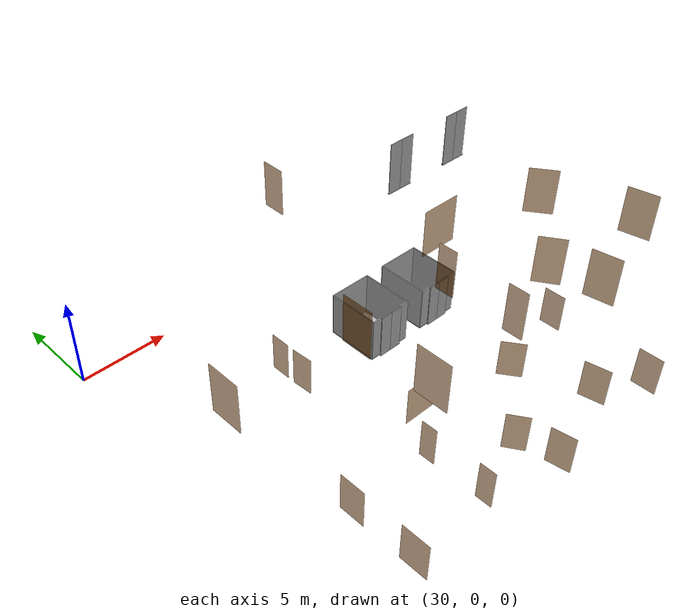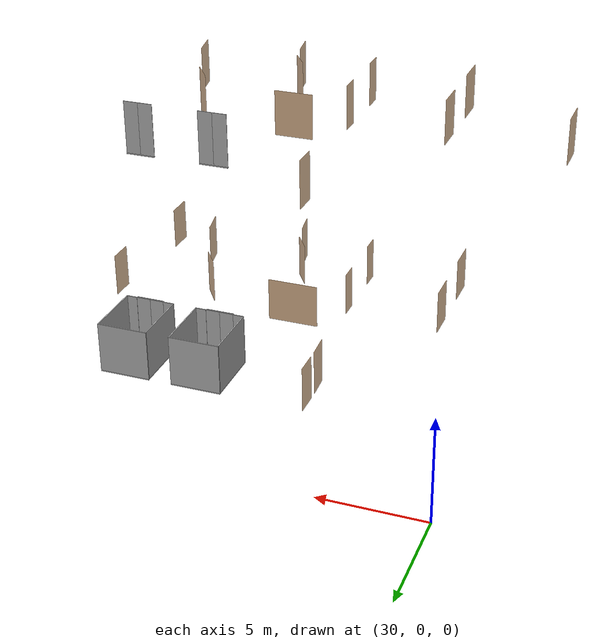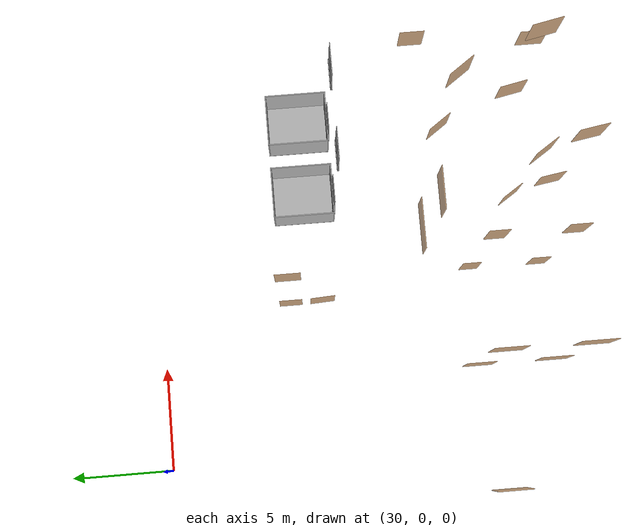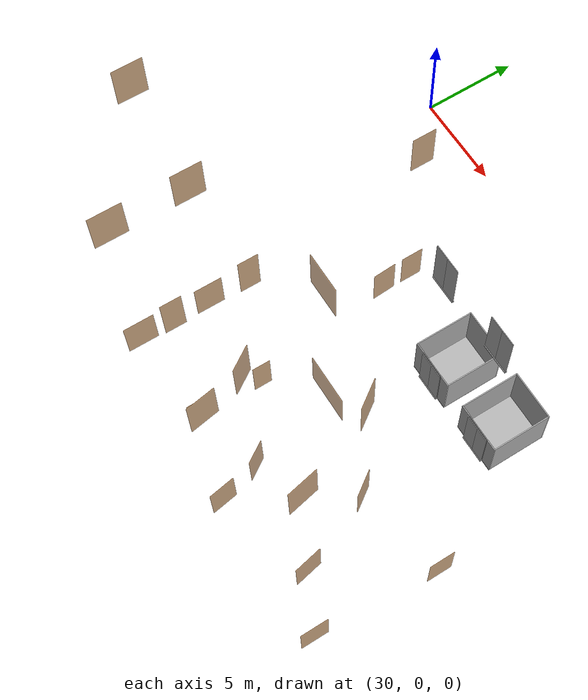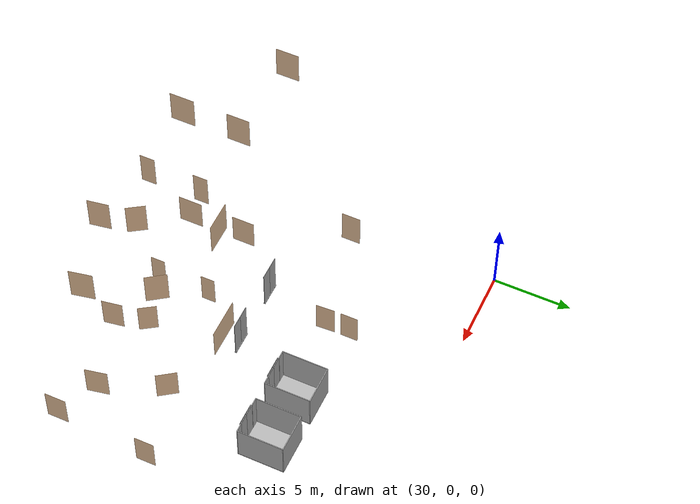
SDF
<sdf version="1.7">
 <world name="world">
  <include><uri>model://sun</uri></include>
  <model name="L1_right_consult_rm_12_outer">
   <pose>33.97311257259339 -19.137196646282852 0.0 0 0 -1.5707963267948966</pose>
   <static>true</static>
   <link name="right">
    <pose>0 0 1.11 0 0 0</pose>
    <visual name="right_visual">
     <geometry><box><size>1.5655586323602984 0.03 2.2</size></box></geometry>
     <material><ambient>0.5 0.25 0 0.6</ambient><diffuse>0.5 0.25 0 0.6</diffuse></material>
    </visual>
    <collision name="right_collision">
     <geometry><box><size>1.5655586323602984 0.03 2.2</size></box></geometry>
     <surface><contact><collide_bitmask>0x02</collide_bitmask></contact></surface>
    </collision>
    <inertial>
     <mass>50.0</mass>
     <inertia><ixx>20.17041666666667</ixx><iyy>30.379057630657705</iyy><izz>10.216140963991034</izz></inertia>
    </inertial>
   </link>
   <joint name="right_joint" type="prismatic">
    <parent>world</parent>
    <child>right</child>
    <axis>
     <xyz>1 0 0</xyz>
     <limit><lower>0.0</lower><upper>1.5755586323602984</upper><effort>500.0</effort></limit>
    </axis>
   </joint>
  </model>
  <model name="L1_right_consult_rm_13_outer">
   <pose>33.97311257259339 -15.447046267451267 0.0 0 0 -1.5707963267948966</pose>
   <static>true</static>
   <link name="right">
    <pose>0 0 1.11 0 0 0</pose>
    <visual name="right_visual">
     <geometry><box><size>1.4589473481789168 0.03 2.2</size></box></geometry>
     <material><ambient>0.5 0.25 0 0.6</ambient><diffuse>0.5 0.25 0 0.6</diffuse></material>
    </visual>
    <collision name="right_collision">
     <geometry><box><size>1.4589473481789168 0.03 2.2</size></box></geometry>
     <surface><contact><collide_bitmask>0x02</collide_bitmask></contact></surface>
    </collision>
    <inertial>
     <mass>50.0</mass>
     <inertia><ixx>20.17041666666667</ixx><iyy>29.035530686492898</iyy><izz>8.872614019826223</izz></inertia>
    </inertial>
   </link>
   <joint name="right_joint" type="prismatic">
    <parent>world</parent>
    <child>right</child>
    <axis>
     <xyz>1 0 0</xyz>
     <limit><lower>0.0</lower><upper>1.4689473481789168</upper><effort>500.0</effort></limit>
    </axis>
   </joint>
  </model>
  <model name="L1_right_consult_rm_1_outer">
   <pose>46.068297373178 -14.530337294719446 0.0 0 0 2.1863116312176896</pose>
   <static>true</static>
   <link name="right">
    <pose>0 0 1.11 0 0 0</pose>
    <visual name="right_visual">
     <geometry><box><size>1.3227213939192073 0.03 2.2</size></box></geometry>
     <material><ambient>0.5 0.25 0 0.6</ambient><diffuse>0.5 0.25 0 0.6</diffuse></material>
    </visual>
    <collision name="right_collision">
     <geometry><box><size>1.3227213939192073 0.03 2.2</size></box></geometry>
     <surface><contact><collide_bitmask>0x02</collide_bitmask></contact></surface>
    </collision>
    <inertial>
     <mass>50.0</mass>
     <inertia><ixx>20.17041666666667</ixx><iyy>27.456632858048216</iyy><izz>7.293716191381544</izz></inertia>
    </inertial>
   </link>
   <joint name="right_joint" type="prismatic">
    <parent>world</parent>
    <child>right</child>
    <axis>
     <xyz>1 0 0</xyz>
     <limit><lower>0.0</lower><upper>1.3327213939192073</upper><effort>500.0</effort></limit>
    </axis>
   </joint>
  </model>
  <model name="L1_right_consult_rm_2_outer">
   <pose>47.68885619783859 -18.3893427175878 0.0 0 0 1.769259662102772</pose>
   <static>true</static>
   <link name="right">
    <pose>0 0 1.11 0 0 0</pose>
    <visual name="right_visual">
     <geometry><box><size>1.409133850260675 0.03 2.2</size></box></geometry>
     <material><ambient>0.5 0.25 0 0.6</ambient><diffuse>0.5 0.25 0 0.6</diffuse></material>
    </visual>
    <collision name="right_collision">
     <geometry><box><size>1.409133850260675 0.03 2.2</size></box></geometry>
     <surface><contact><collide_bitmask>0x02</collide_bitmask></contact></surface>
    </collision>
    <inertial>
     <mass>50.0</mass>
     <inertia><ixx>20.17041666666667</ixx><iyy>28.440242533126984</iyy><izz>8.277325866460309</izz></inertia>
    </inertial>
   </link>
   <joint name="right_joint" type="prismatic">
    <parent>world</parent>
    <child>right</child>
    <axis>
     <xyz>1 0 0</xyz>
     <limit><lower>0.0</lower><upper>1.419133850260675</upper><effort>500.0</effort></limit>
    </axis>
   </joint>
  </model>
  <model name="L1_right_procedure">
   <pose>50.74072535671709 -13.553592169531953 0.0 0 0 1.5707963267948966</pose>
   <link name="right">
    <pose>0 0 1.11 0 0 0</pose>
    <visual name="right_visual">
     <geometry><box><size>1.2479862312987977 0.03 2.2</size></box></geometry>
     <material><ambient>0.5 0.25 0 0.6</ambient><diffuse>0.5 0.25 0 0.6</diffuse></material>
    </visual>
    <collision name="right_collision">
     <geometry><box><size>1.2479862312987977 0.03 2.2</size></box></geometry>
     <surface><contact><collide_bitmask>0x02</collide_bitmask></contact></surface>
    </collision>
    <inertial>
     <mass>50.0</mass>
     <inertia><ixx>20.17041666666667</ixx><iyy>26.656123472964072</iyy><izz>6.493206806297401</izz></inertia>
    </inertial>
   </link>
   <joint name="right_joint" type="prismatic">
    <parent>world</parent>
    <child>right</child>
    <axis>
     <xyz>1 0 0</xyz>
     <limit><lower>0.0</lower><upper>1.2579862312987977</upper><effort>500.0</effort></limit>
    </axis>
   </joint>
   <plugin name="door" filename="libdoor.so">
    <v_max_door>0.2</v_max_door>
    <a_max_door>0.2</a_max_door>
    <a_nom_door>0.08</a_nom_door>
    <dx_min_door>0.001</dx_min_door>
    <f_max_door>100.0</f_max_door>
    <door name="L1_right_procedure" type="SlidingDoor" left_joint_name="empty_joint" right_joint_name="right_joint"/>
   </plugin>
  </model>
  <model name="L1_right_treatment">
   <pose>50.29120803046041 -19.682408368908906 0.0 0 0 1.5707963267948966</pose>
   <link name="right">
    <pose>0 0 1.11 0 0 0</pose>
    <visual name="right_visual">
     <geometry><box><size>1.3636702434521746 0.03 2.2</size></box></geometry>
     <material><ambient>0.5 0.25 0 0.6</ambient><diffuse>0.5 0.25 0 0.6</diffuse></material>
    </visual>
    <collision name="right_collision">
     <geometry><box><size>1.3636702434521746 0.03 2.2</size></box></geometry>
     <surface><contact><collide_bitmask>0x02</collide_bitmask></contact></surface>
    </collision>
    <inertial>
     <mass>50.0</mass>
     <inertia><ixx>20.17041666666667</ixx><iyy>27.91498555365381</iyy><izz>7.7520688869871375</izz></inertia>
    </inertial>
   </link>
   <joint name="right_joint" type="prismatic">
    <parent>world</parent>
    <child>right</child>
    <axis>
     <xyz>1 0 0</xyz>
     <limit><lower>0.0</lower><upper>1.3736702434521746</upper><effort>500.0</effort></limit>
    </axis>
   </joint>
   <plugin name="door" filename="libdoor.so">
    <v_max_door>0.2</v_max_door>
    <a_max_door>0.2</a_max_door>
    <a_nom_door>0.08</a_nom_door>
    <dx_min_door>0.001</dx_min_door>
    <f_max_door>100.0</f_max_door>
    <door name="L1_right_treatment" type="SlidingDoor" left_joint_name="empty_joint" right_joint_name="right_joint"/>
   </plugin>
  </model>
  <model name="L1_cleaning_supplies">
   <pose>37.73509095804011 -6.428418137763938 0.0 0 0 1.5707963267948966</pose>
   <static>true</static>
   <link name="right">
    <pose>0 0 1.11 0 0 0</pose>
    <visual name="right_visual">
     <geometry><box><size>1.1157720856890128 0.03 2.2</size></box></geometry>
     <material><ambient>0.5 0.25 0 0.6</ambient><diffuse>0.5 0.25 0 0.6</diffuse></material>
    </visual>
    <collision name="right_collision">
     <geometry><box><size>1.1157720856890128 0.03 2.2</size></box></geometry>
     <surface><contact><collide_bitmask>0x02</collide_bitmask></contact></surface>
    </collision>
    <inertial>
     <mass>50.0</mass>
     <inertia><ixx>20.17041666666667</ixx><iyy>25.35394728001171</iyy><izz>5.19103061334504</izz></inertia>
    </inertial>
   </link>
   <joint name="right_joint" type="revolute">
    <parent>world</parent>
    <child>right</child>
    <axis><xyz>0 0 -1</xyz><limit><lower>0</lower><upper>1.57</upper></limit></axis>
    <pose>0.5628860428445064 0 0 0 0 0</pose>
   </joint>
  </model>
  <model name="L1_wc_2">
   <pose>37.76922810661132 -8.000907657397798 0.0 0 0 1.6272475606047323</pose>
   <static>true</static>
   <link name="right">
    <pose>0 0 1.11 0 0 0</pose>
    <visual name="right_visual">
     <geometry><box><size>1.2000811286351407 0.03 2.2</size></box></geometry>
     <material><ambient>0.5 0.25 0 0.6</ambient><diffuse>0.5 0.25 0 0.6</diffuse></material>
    </visual>
    <collision name="right_collision">
     <geometry><box><size>1.2000811286351407 0.03 2.2</size></box></geometry>
     <surface><contact><collide_bitmask>0x02</collide_bitmask></contact></surface>
    </collision>
    <inertial>
     <mass>50.0</mass>
     <inertia><ixx>20.17041666666667</ixx><iyy>26.167477980442474</iyy><izz>6.004561313775805</izz></inertia>
    </inertial>
   </link>
   <joint name="right_joint" type="revolute">
    <parent>world</parent>
    <child>right</child>
    <axis><xyz>0 0 -1</xyz><limit><lower>0</lower><upper>1.57</upper></limit></axis>
    <pose>0.6050405643175704 0 0 0 0 0</pose>
   </joint>
  </model>
  <model name="L1_right_consult_rm_2_inner">
   <pose>42.93730433444871 -19.879491173416426 0.0 0 0 -1.4067292151199144</pose>
   <static>true</static>
   <link name="right">
    <pose>0 0 1.11 0 0 0</pose>
    <visual name="right_visual">
     <geometry><box><size>1.3117728040741947 0.03 2.2</size></box></geometry>
     <material><ambient>0.5 0.25 0 0.6</ambient><diffuse>0.5 0.25 0 0.6</diffuse></material>
    </visual>
    <collision name="right_collision">
     <geometry><box><size>1.3117728040741947 0.03 2.2</size></box></geometry>
     <surface><contact><collide_bitmask>0x02</collide_bitmask></contact></surface>
    </collision>
    <inertial>
     <mass>50.0</mass>
     <inertia><ixx>20.17041666666667</ixx><iyy>27.336449539619487</iyy><izz>7.173532872952816</izz></inertia>
    </inertial>
   </link>
   <joint name="right_joint" type="revolute">
    <parent>world</parent>
    <child>right</child>
    <axis><xyz>0 0 -1</xyz><limit><lower>0</lower><upper>1.57</upper></limit></axis>
    <pose>0.6608864020370974 0 0 0 0 0</pose>
   </joint>
  </model>
  <model name="L1_right_consult_rm_12_inner">
   <pose>38.85542479135422 -18.86473212568749 0.0 0 0 1.5707963267948966</pose>
   <static>true</static>
   <link name="right">
    <pose>0 0 1.11 0 0 0</pose>
    <visual name="right_visual">
     <geometry><box><size>0.9258640052305667 0.03 2.2</size></box></geometry>
     <material><ambient>0.5 0.25 0 0.6</ambient><diffuse>0.5 0.25 0 0.6</diffuse></material>
    </visual>
    <collision name="right_collision">
     <geometry><box><size>0.9258640052305667 0.03 2.2</size></box></geometry>
     <surface><contact><collide_bitmask>0x02</collide_bitmask></contact></surface>
    </collision>
    <inertial>
     <mass>50.0</mass>
     <inertia><ixx>20.17041666666667</ixx><iyy>23.738433984089948</iyy><izz>3.5755173174232784</izz></inertia>
    </inertial>
   </link>
   <joint name="right_joint" type="prismatic">
    <parent>world</parent>
    <child>right</child>
    <axis>
     <xyz>1 0 0</xyz>
     <limit><lower>0.0</lower><upper>0.9358640052305667</upper><effort>500.0</effort></limit>
    </axis>
   </joint>
  </model>
  <model name="L1_right_consult_rm_1_inner">
   <pose>42.30254990192688 -17.806843967539727 0.0 0 0 -0.9867955334441539</pose>
   <static>true</static>
   <link name="right">
    <pose>0 0 1.11 0 0 0</pose>
    <visual name="right_visual">
     <geometry><box><size>1.1804239723782883 0.03 2.2</size></box></geometry>
     <material><ambient>0.5 0.25 0 0.6</ambient><diffuse>0.5 0.25 0 0.6</diffuse></material>
    </visual>
    <collision name="right_collision">
     <geometry><box><size>1.1804239723782883 0.03 2.2</size></box></geometry>
     <surface><contact><collide_bitmask>0x02</collide_bitmask></contact></surface>
    </collision>
    <inertial>
     <mass>50.0</mass>
     <inertia><ixx>20.17041666666667</ixx><iyy>25.972503144022248</iyy><izz>5.809586477355575</izz></inertia>
    </inertial>
   </link>
   <joint name="right_joint" type="revolute">
    <parent>world</parent>
    <child>right</child>
    <axis><xyz>0 0 -1</xyz><limit><lower>0</lower><upper>1.57</upper></limit></axis>
    <pose>0.5952119861891442 0 0 0 0 0</pose>
   </joint>
  </model>
  <model name="L1_right_consult_rm_13_inner">
   <pose>38.85542479135422 -15.441109957309347 0.0 0 0 1.5707963267948966</pose>
   <static>true</static>
   <link name="right">
    <pose>0 0 1.11 0 0 0</pose>
    <visual name="right_visual">
     <geometry><box><size>0.90217260874582 0.03 2.2</size></box></geometry>
     <material><ambient>0.5 0.25 0 0.6</ambient><diffuse>0.5 0.25 0 0.6</diffuse></material>
    </visual>
    <collision name="right_collision">
     <geometry><box><size>0.90217260874582 0.03 2.2</size></box></geometry>
     <surface><contact><collide_bitmask>0x02</collide_bitmask></contact></surface>
    </collision>
    <inertial>
     <mass>50.0</mass>
     <inertia><ixx>20.17041666666667</ixx><iyy>23.557980899880164</iyy><izz>3.395064233213493</izz></inertia>
    </inertial>
   </link>
   <joint name="right_joint" type="prismatic">
    <parent>world</parent>
    <child>right</child>
    <axis>
     <xyz>1 0 0</xyz>
     <limit><lower>0.0</lower><upper>0.91217260874582</upper><effort>500.0</effort></limit>
    </axis>
   </joint>
  </model>
  <model name="L1_right_inner">
   <pose>41.063624475981726 -13.26668397369333 0.0 0 0 3.141247508642615</pose>
   <link name="right">
    <pose>0 0 1.11 0 0 0</pose>
    <visual name="right_visual">
     <geometry><box><size>2.5640703813862693 0.03 2.2</size></box></geometry>
     <material><ambient>0.5 0.25 0 0.6</ambient><diffuse>0.5 0.25 0 0.6</diffuse></material>
    </visual>
    <collision name="right_collision">
     <geometry><box><size>2.5640703813862693 0.03 2.2</size></box></geometry>
     <surface><contact><collide_bitmask>0x02</collide_bitmask></contact></surface>
    </collision>
    <inertial>
     <mass>50.0</mass>
     <inertia><ixx>20.17041666666667</ixx><iyy>47.56023716959304</iyy><izz>27.39732050292637</izz></inertia>
    </inertial>
   </link>
   <joint name="right_joint" type="prismatic">
    <parent>world</parent>
    <child>right</child>
    <axis>
     <xyz>1 0 0</xyz>
     <limit><lower>0.0</lower><upper>2.574070381386269</upper><effort>500.0</effort></limit>
    </axis>
   </joint>
   <plugin name="door" filename="libdoor.so">
    <v_max_door>0.2</v_max_door>
    <a_max_door>0.2</a_max_door>
    <a_nom_door>0.08</a_nom_door>
    <dx_min_door>0.001</dx_min_door>
    <f_max_door>100.0</f_max_door>
    <door name="L1_right_inner" type="SlidingDoor" left_joint_name="empty_joint" right_joint_name="right_joint"/>
   </plugin>
  </model>
  <model name="L2_left_consult_rm_1_outer">
   <pose>28.179085419791573 -15.017895465559029 10.0 0 0 -1.5707963267948966</pose>
   <static>true</static>
   <link name="right">
    <pose>0 0 1.11 0 0 0</pose>
    <visual name="right_visual">
     <geometry><box><size>1.4871885696703975 0.03 2.2</size></box></geometry>
     <material><ambient>0.5 0.25 0 0.6</ambient><diffuse>0.5 0.25 0 0.6</diffuse></material>
    </visual>
    <collision name="right_collision">
     <geometry><box><size>1.4871885696703975 0.03 2.2</size></box></geometry>
     <surface><contact><collide_bitmask>0x02</collide_bitmask></contact></surface>
    </collision>
    <inertial>
     <mass>50.0</mass>
     <inertia><ixx>20.17041666666667</ixx><iyy>29.38220767399285</iyy><izz>9.219291007326179</izz></inertia>
    </inertial>
   </link>
   <joint name="right_joint" type="prismatic">
    <parent>world</parent>
    <child>right</child>
    <axis>
     <xyz>1 0 0</xyz>
     <limit><lower>0.0</lower><upper>1.4971885696703975</upper><effort>500.0</effort></limit>
    </axis>
   </joint>
  </model>
  <model name="L2_right_consult_rm_12_outer">
   <pose>33.97311257259339 -19.137196646282852 10.0 0 0 -1.5707963267948966</pose>
   <static>true</static>
   <link name="right">
    <pose>0 0 1.11 0 0 0</pose>
    <visual name="right_visual">
     <geometry><box><size>1.5655586323602984 0.03 2.2</size></box></geometry>
     <material><ambient>0.5 0.25 0 0.6</ambient><diffuse>0.5 0.25 0 0.6</diffuse></material>
    </visual>
    <collision name="right_collision">
     <geometry><box><size>1.5655586323602984 0.03 2.2</size></box></geometry>
     <surface><contact><collide_bitmask>0x02</collide_bitmask></contact></surface>
    </collision>
    <inertial>
     <mass>50.0</mass>
     <inertia><ixx>20.17041666666667</ixx><iyy>30.379057630657705</iyy><izz>10.216140963991034</izz></inertia>
    </inertial>
   </link>
   <joint name="right_joint" type="prismatic">
    <parent>world</parent>
    <child>right</child>
    <axis>
     <xyz>1 0 0</xyz>
     <limit><lower>0.0</lower><upper>1.5755586323602984</upper><effort>500.0</effort></limit>
    </axis>
   </joint>
  </model>
  <model name="L2_right_consult_rm_13_outer">
   <pose>33.97311257259339 -15.447046267451267 10.0 0 0 -1.5707963267948966</pose>
   <static>true</static>
   <link name="right">
    <pose>0 0 1.11 0 0 0</pose>
    <visual name="right_visual">
     <geometry><box><size>1.4589473481789168 0.03 2.2</size></box></geometry>
     <material><ambient>0.5 0.25 0 0.6</ambient><diffuse>0.5 0.25 0 0.6</diffuse></material>
    </visual>
    <collision name="right_collision">
     <geometry><box><size>1.4589473481789168 0.03 2.2</size></box></geometry>
     <surface><contact><collide_bitmask>0x02</collide_bitmask></contact></surface>
    </collision>
    <inertial>
     <mass>50.0</mass>
     <inertia><ixx>20.17041666666667</ixx><iyy>29.035530686492898</iyy><izz>8.872614019826223</izz></inertia>
    </inertial>
   </link>
   <joint name="right_joint" type="prismatic">
    <parent>world</parent>
    <child>right</child>
    <axis>
     <xyz>1 0 0</xyz>
     <limit><lower>0.0</lower><upper>1.4689473481789168</upper><effort>500.0</effort></limit>
    </axis>
   </joint>
  </model>
  <model name="L2_right_consult_rm_1_outer">
   <pose>46.068297373178 -14.530337294719446 10.0 0 0 2.1863116312176896</pose>
   <static>true</static>
   <link name="right">
    <pose>0 0 1.11 0 0 0</pose>
    <visual name="right_visual">
     <geometry><box><size>1.3227213939192073 0.03 2.2</size></box></geometry>
     <material><ambient>0.5 0.25 0 0.6</ambient><diffuse>0.5 0.25 0 0.6</diffuse></material>
    </visual>
    <collision name="right_collision">
     <geometry><box><size>1.3227213939192073 0.03 2.2</size></box></geometry>
     <surface><contact><collide_bitmask>0x02</collide_bitmask></contact></surface>
    </collision>
    <inertial>
     <mass>50.0</mass>
     <inertia><ixx>20.17041666666667</ixx><iyy>27.456632858048216</iyy><izz>7.293716191381544</izz></inertia>
    </inertial>
   </link>
   <joint name="right_joint" type="prismatic">
    <parent>world</parent>
    <child>right</child>
    <axis>
     <xyz>1 0 0</xyz>
     <limit><lower>0.0</lower><upper>1.3327213939192073</upper><effort>500.0</effort></limit>
    </axis>
   </joint>
  </model>
  <model name="L2_right_consult_rm_2_outer">
   <pose>47.68885619783859 -18.3893427175878 10.0 0 0 1.769259662102772</pose>
   <static>true</static>
   <link name="right">
    <pose>0 0 1.11 0 0 0</pose>
    <visual name="right_visual">
     <geometry><box><size>1.409133850260675 0.03 2.2</size></box></geometry>
     <material><ambient>0.5 0.25 0 0.6</ambient><diffuse>0.5 0.25 0 0.6</diffuse></material>
    </visual>
    <collision name="right_collision">
     <geometry><box><size>1.409133850260675 0.03 2.2</size></box></geometry>
     <surface><contact><collide_bitmask>0x02</collide_bitmask></contact></surface>
    </collision>
    <inertial>
     <mass>50.0</mass>
     <inertia><ixx>20.17041666666667</ixx><iyy>28.440242533126984</iyy><izz>8.277325866460309</izz></inertia>
    </inertial>
   </link>
   <joint name="right_joint" type="prismatic">
    <parent>world</parent>
    <child>right</child>
    <axis>
     <xyz>1 0 0</xyz>
     <limit><lower>0.0</lower><upper>1.419133850260675</upper><effort>500.0</effort></limit>
    </axis>
   </joint>
  </model>
  <model name="L2_right_consult_rm_13_inner">
   <pose>38.85542479135422 -15.441109957309347 10.0 0 0 1.5707963267948966</pose>
   <static>true</static>
   <link name="right">
    <pose>0 0 1.11 0 0 0</pose>
    <visual name="right_visual">
     <geometry><box><size>0.90217260874582 0.03 2.2</size></box></geometry>
     <material><ambient>0.5 0.25 0 0.6</ambient><diffuse>0.5 0.25 0 0.6</diffuse></material>
    </visual>
    <collision name="right_collision">
     <geometry><box><size>0.90217260874582 0.03 2.2</size></box></geometry>
     <surface><contact><collide_bitmask>0x02</collide_bitmask></contact></surface>
    </collision>
    <inertial>
     <mass>50.0</mass>
     <inertia><ixx>20.17041666666667</ixx><iyy>23.557980899880164</iyy><izz>3.395064233213493</izz></inertia>
    </inertial>
   </link>
   <joint name="right_joint" type="prismatic">
    <parent>world</parent>
    <child>right</child>
    <axis>
     <xyz>1 0 0</xyz>
     <limit><lower>0.0</lower><upper>0.91217260874582</upper><effort>500.0</effort></limit>
    </axis>
   </joint>
  </model>
  <model name="L2_right_consult_rm_1_inner">
   <pose>42.30254990192688 -17.806843967539727 10.0 0 0 -0.9867955334441539</pose>
   <static>true</static>
   <link name="right">
    <pose>0 0 1.11 0 0 0</pose>
    <visual name="right_visual">
     <geometry><box><size>1.1804239723782883 0.03 2.2</size></box></geometry>
     <material><ambient>0.5 0.25 0 0.6</ambient><diffuse>0.5 0.25 0 0.6</diffuse></material>
    </visual>
    <collision name="right_collision">
     <geometry><box><size>1.1804239723782883 0.03 2.2</size></box></geometry>
     <surface><contact><collide_bitmask>0x02</collide_bitmask></contact></surface>
    </collision>
    <inertial>
     <mass>50.0</mass>
     <inertia><ixx>20.17041666666667</ixx><iyy>25.972503144022248</iyy><izz>5.809586477355575</izz></inertia>
    </inertial>
   </link>
   <joint name="right_joint" type="revolute">
    <parent>world</parent>
    <child>right</child>
    <axis><xyz>0 0 -1</xyz><limit><lower>0</lower><upper>1.57</upper></limit></axis>
    <pose>0.5952119861891442 0 0 0 0 0</pose>
   </joint>
  </model>
  <model name="L2_right_consult_rm_12_inner">
   <pose>38.85542479135422 -18.86473212568749 10.0 0 0 1.5707963267948966</pose>
   <static>true</static>
   <link name="right">
    <pose>0 0 1.11 0 0 0</pose>
    <visual name="right_visual">
     <geometry><box><size>0.9258640052305667 0.03 2.2</size></box></geometry>
     <material><ambient>0.5 0.25 0 0.6</ambient><diffuse>0.5 0.25 0 0.6</diffuse></material>
    </visual>
    <collision name="right_collision">
     <geometry><box><size>0.9258640052305667 0.03 2.2</size></box></geometry>
     <surface><contact><collide_bitmask>0x02</collide_bitmask></contact></surface>
    </collision>
    <inertial>
     <mass>50.0</mass>
     <inertia><ixx>20.17041666666667</ixx><iyy>23.738433984089948</iyy><izz>3.5755173174232784</izz></inertia>
    </inertial>
   </link>
   <joint name="right_joint" type="prismatic">
    <parent>world</parent>
    <child>right</child>
    <axis>
     <xyz>1 0 0</xyz>
     <limit><lower>0.0</lower><upper>0.9358640052305667</upper><effort>500.0</effort></limit>
    </axis>
   </joint>
  </model>
  <model name="L2_right_consult_rm_2_inner">
   <pose>42.93730433444871 -19.879491173416426 10.0 0 0 -1.4067292151199144</pose>
   <static>true</static>
   <link name="right">
    <pose>0 0 1.11 0 0 0</pose>
    <visual name="right_visual">
     <geometry><box><size>1.3117728040741947 0.03 2.2</size></box></geometry>
     <material><ambient>0.5 0.25 0 0.6</ambient><diffuse>0.5 0.25 0 0.6</diffuse></material>
    </visual>
    <collision name="right_collision">
     <geometry><box><size>1.3117728040741947 0.03 2.2</size></box></geometry>
     <surface><contact><collide_bitmask>0x02</collide_bitmask></contact></surface>
    </collision>
    <inertial>
     <mass>50.0</mass>
     <inertia><ixx>20.17041666666667</ixx><iyy>27.336449539619487</iyy><izz>7.173532872952816</izz></inertia>
    </inertial>
   </link>
   <joint name="right_joint" type="revolute">
    <parent>world</parent>
    <child>right</child>
    <axis><xyz>0 0 -1</xyz><limit><lower>0</lower><upper>1.57</upper></limit></axis>
    <pose>0.6608864020370974 0 0 0 0 0</pose>
   </joint>
  </model>
  <model name="L2_cleaning_supplies">
   <pose>37.73509095804011 -6.428418137763938 10.0 0 0 1.5707963267948966</pose>
   <static>true</static>
   <link name="right">
    <pose>0 0 1.11 0 0 0</pose>
    <visual name="right_visual">
     <geometry><box><size>1.1157720856890128 0.03 2.2</size></box></geometry>
     <material><ambient>0.5 0.25 0 0.6</ambient><diffuse>0.5 0.25 0 0.6</diffuse></material>
    </visual>
    <collision name="right_collision">
     <geometry><box><size>1.1157720856890128 0.03 2.2</size></box></geometry>
     <surface><contact><collide_bitmask>0x02</collide_bitmask></contact></surface>
    </collision>
    <inertial>
     <mass>50.0</mass>
     <inertia><ixx>20.17041666666667</ixx><iyy>25.35394728001171</iyy><izz>5.19103061334504</izz></inertia>
    </inertial>
   </link>
   <joint name="right_joint" type="revolute">
    <parent>world</parent>
    <child>right</child>
    <axis><xyz>0 0 -1</xyz><limit><lower>0</lower><upper>1.57</upper></limit></axis>
    <pose>0.5628860428445064 0 0 0 0 0</pose>
   </joint>
  </model>
  <model name="L2_right_inner">
   <pose>40.88623514480216 -13.271597246259772 10.0 0 0 3.141592653589793</pose>
   <link name="right">
    <pose>0 0 1.11 0 0 0</pose>
    <visual name="right_visual">
     <geometry><box><size>1.8703430637283256 0.03 2.2</size></box></geometry>
     <material><ambient>0.5 0.25 0 0.6</ambient><diffuse>0.5 0.25 0 0.6</diffuse></material>
    </visual>
    <collision name="right_collision">
     <geometry><box><size>1.8703430637283256 0.03 2.2</size></box></geometry>
     <surface><contact><collide_bitmask>0x02</collide_bitmask></contact></surface>
    </collision>
    <inertial>
     <mass>50.0</mass>
     <inertia><ixx>20.17041666666667</ixx><iyy>34.74242990015275</iyy><izz>14.579513233486082</izz></inertia>
    </inertial>
   </link>
   <joint name="right_joint" type="prismatic">
    <parent>world</parent>
    <child>right</child>
    <axis>
     <xyz>1 0 0</xyz>
     <limit><lower>0.0</lower><upper>1.8803430637283256</upper><effort>500.0</effort></limit>
    </axis>
   </joint>
   <plugin name="door" filename="libdoor.so">
    <v_max_door>0.2</v_max_door>
    <a_max_door>0.2</a_max_door>
    <a_nom_door>0.08</a_nom_door>
    <dx_min_door>0.001</dx_min_door>
    <f_max_door>100.0</f_max_door>
    <door name="L2_right_inner" type="SlidingDoor" left_joint_name="empty_joint" right_joint_name="right_joint"/>
   </plugin>
  </model>
  <model name="ShaftDoor_lift_1_L1_lift_1_door">
   <pose>43.072797723889636 -8.980481477122195 0.0 0 0 3.14</pose>
   <link name="right_door">
    <pose>0.35 0 1.25 0 0 0</pose>
    <visual name="right_door_visual">
     <geometry><box><size>0.7 0.03 2.5</size></box></geometry>
     <material>
      <ambient>0.5 0.5 0.5 1</ambient>
      <diffuse>0.7 0.7 0.7 1</diffuse>
      <specular>0.6 0.6 0.6 1</specular>
      <emissive>0.1 0.1 0.1 1</emissive>
     </material>
    </visual>
    <collision name="right_door_collision">
     <geometry><box><size>0.7 0.03 2.5</size></box></geometry>
     <surface><contact><collide_bitmask>0x02</collide_bitmask></contact></surface>
    </collision>
   </link>
   <joint name="right_joint" type="prismatic">
    <parent>world</parent>
    <child>right_door</child>
    <axis><xyz>1 0 0</xyz><limit><lower>0</lower><upper>0.7</upper></limit></axis>
   </joint>
   <link name="left_door">
    <pose>-0.35 0 1.25 0 0 0</pose>
    <visual name="left_door_visual">
     <geometry><box><size>0.7 0.03 2.5</size></box></geometry>
     <material>
      <ambient>0.5 0.5 0.5 1</ambient>
      <diffuse>0.7 0.7 0.7 1</diffuse>
      <specular>0.6 0.6 0.6 1</specular>
      <emissive>0.1 0.1 0.1 1</emissive>
     </material>
    </visual>
    <collision name="left_door_collision">
     <geometry><box><size>0.7 0.03 2.5</size></box></geometry>
     <surface><contact><collide_bitmask>0x02</collide_bitmask></contact></surface>
    </collision>
   </link>
   <joint name="left_joint" type="prismatic">
    <parent>world</parent>
    <child>left_door</child>
    <axis><xyz>1 0 0</xyz><limit><lower>-0.7</lower><upper>0</upper></limit></axis>
   </joint>
   <link name="ramp">
    <pose>0 0 -0.025 0 0 0</pose>
    <visual name="ramp_visual">
     <geometry><box><size>1.4 0.1 0.05</size></box></geometry>
     <material>
      <ambient>0.5 0.5 0.5 1</ambient>
      <diffuse>0.7 0.7 0.7 1</diffuse>
      <specular>0.6 0.6 0.6 1</specular>
      <emissive>0.1 0.1 0.1 1</emissive>
     </material>
    </visual>
    <collision name="ramp_collision">
     <geometry><box><size>1.4 0.1 0.05</size></box></geometry>
     <surface><contact><collide_bitmask>0x02</collide_bitmask></contact></surface>
    </collision>
   </link>
   <joint name="ramp_joint" type="fixed"><parent>world</parent><child>ramp</child></joint>
   <plugin name="door" filename="libdoor.so">
    <v_max_door>0.3</v_max_door>
    <a_max_door>0.2</a_max_door>
    <a_nom_door>0.1</a_nom_door>
    <dx_min_door>0.0001</dx_min_door>
    <f_max_door>35.0</f_max_door>
    <door left_joint_name="left_joint" name="ShaftDoor_lift_1_L1_lift_1_door" right_joint_name="right_joint" type="DoubleSlidingDoor"/>
   </plugin>
  </model>
  <model name="ShaftDoor_lift_1_L2_lift_1_door">
   <pose>43.072797723889636 -8.980481477122195 10.0 0 0 3.14</pose>
   <link name="right_door">
    <pose>0.35 0 1.25 0 0 0</pose>
    <visual name="right_door_visual">
     <geometry><box><size>0.7 0.03 2.5</size></box></geometry>
     <material>
      <ambient>0.5 0.5 0.5 1</ambient>
      <diffuse>0.7 0.7 0.7 1</diffuse>
      <specular>0.6 0.6 0.6 1</specular>
      <emissive>0.1 0.1 0.1 1</emissive>
     </material>
    </visual>
    <collision name="right_door_collision">
     <geometry><box><size>0.7 0.03 2.5</size></box></geometry>
     <surface><contact><collide_bitmask>0x02</collide_bitmask></contact></surface>
    </collision>
   </link>
   <joint name="right_joint" type="prismatic">
    <parent>world</parent>
    <child>right_door</child>
    <axis><xyz>1 0 0</xyz><limit><lower>0</lower><upper>0.7</upper></limit></axis>
   </joint>
   <link name="left_door">
    <pose>-0.35 0 1.25 0 0 0</pose>
    <visual name="left_door_visual">
     <geometry><box><size>0.7 0.03 2.5</size></box></geometry>
     <material>
      <ambient>0.5 0.5 0.5 1</ambient>
      <diffuse>0.7 0.7 0.7 1</diffuse>
      <specular>0.6 0.6 0.6 1</specular>
      <emissive>0.1 0.1 0.1 1</emissive>
     </material>
    </visual>
    <collision name="left_door_collision">
     <geometry><box><size>0.7 0.03 2.5</size></box></geometry>
     <surface><contact><collide_bitmask>0x02</collide_bitmask></contact></surface>
    </collision>
   </link>
   <joint name="left_joint" type="prismatic">
    <parent>world</parent>
    <child>left_door</child>
    <axis><xyz>1 0 0</xyz><limit><lower>-0.7</lower><upper>0</upper></limit></axis>
   </joint>
   <link name="ramp">
    <pose>0 0 -0.025 0 0 0</pose>
    <visual name="ramp_visual">
     <geometry><box><size>1.4 0.1 0.05</size></box></geometry>
     <material>
      <ambient>0.5 0.5 0.5 1</ambient>
      <diffuse>0.7 0.7 0.7 1</diffuse>
      <specular>0.6 0.6 0.6 1</specular>
      <emissive>0.1 0.1 0.1 1</emissive>
     </material>
    </visual>
    <collision name="ramp_collision">
     <geometry><box><size>1.4 0.1 0.05</size></box></geometry>
     <surface><contact><collide_bitmask>0x02</collide_bitmask></contact></surface>
    </collision>
   </link>
   <joint name="ramp_joint" type="fixed"><parent>world</parent><child>ramp</child></joint>
   <plugin name="door" filename="libdoor.so">
    <v_max_door>0.3</v_max_door>
    <a_max_door>0.2</a_max_door>
    <a_nom_door>0.1</a_nom_door>
    <dx_min_door>0.0001</dx_min_door>
    <f_max_door>35.0</f_max_door>
    <door left_joint_name="left_joint" name="ShaftDoor_lift_1_L2_lift_1_door" right_joint_name="right_joint" type="DoubleSlidingDoor"/>
   </plugin>
  </model>
  <model name="lift_1">
   <link name="platform">
    <inertial><mass>1200</mass><inertia><ixx>625.25</ixx><iyy>900.25</iyy><izz>1525.0</izz></inertia></inertial>
    <visual name="floor_visual">
     <pose>0 0 -0.025 0 0 0</pose>
     <geometry><box><size>2.5 3.0 0.05</size></box></geometry>
     <material>
      <ambient>0.5 0.5 0.5 1</ambient>
      <diffuse>0.7 0.7 0.7 1</diffuse>
      <specular>0.6 0.6 0.6 1</specular>
      <emissive>0.1 0.1 0.1 1</emissive>
     </material>
    </visual>
    <collision name="floor_collision">
     <pose>0 0 -0.025 0 0 0</pose>
     <geometry><box><size>2.5 3.0 0.05</size></box></geometry>
     <surface><contact><collide_bitmask>0x01</collide_bitmask></contact></surface>
    </collision>
    <visual name="frontwall1_visual">
     <pose>-0.975 1.475 1.25 0 0 0</pose>
     <geometry><box><size>0.55 0.05 2.5</size></box></geometry>
     <material>
      <ambient>0.5 0.5 0.5 1</ambient>
      <diffuse>0.7 0.7 0.7 1</diffuse>
      <specular>0.6 0.6 0.6 1</specular>
      <emissive>0.1 0.1 0.1 1</emissive>
     </material>
    </visual>
    <collision name="frontwall1_collision">
     <pose>-0.975 1.475 1.25 0 0 0</pose>
     <geometry><box><size>0.55 0.05 2.5</size></box></geometry>
     <surface><contact><collide_bitmask>0x01</collide_bitmask></contact></surface>
    </collision>
    <visual name="frontwall2_visual">
     <pose>0.975 1.475 1.25 0 0 0</pose>
     <geometry><box><size>0.55 0.05 2.5</size></box></geometry>
     <material>
      <ambient>0.5 0.5 0.5 1</ambient>
      <diffuse>0.7 0.7 0.7 1</diffuse>
      <specular>0.6 0.6 0.6 1</specular>
      <emissive>0.1 0.1 0.1 1</emissive>
     </material>
    </visual>
    <collision name="frontwall2_collision">
     <pose>0.975 1.475 1.25 0 0 0</pose>
     <geometry><box><size>0.55 0.05 2.5</size></box></geometry>
     <surface><contact><collide_bitmask>0x01</collide_bitmask></contact></surface>
    </collision>
    <visual name="backwall1_visual">
     <pose>0.0 -1.475 1.25 0 0 0</pose>
     <geometry><box><size>2.5 0.05 2.5</size></box></geometry>
     <material>
      <ambient>0.5 0.5 0.5 1</ambient>
      <diffuse>0.7 0.7 0.7 1</diffuse>
      <specular>0.6 0.6 0.6 1</specular>
      <emissive>0.1 0.1 0.1 1</emissive>
     </material>
    </visual>
    <collision name="backwall1_collision">
     <pose>0.0 -1.475 1.25 0 0 0</pose>
     <geometry><box><size>2.5 0.05 2.5</size></box></geometry>
     <surface><contact><collide_bitmask>0x01</collide_bitmask></contact></surface>
    </collision>
    <visual name="leftwall1_visual">
     <pose>-1.225 0.0 1.25 0 0 1.5707963267948966</pose>
     <geometry><box><size>2.9 0.05 2.5</size></box></geometry>
     <material>
      <ambient>0.5 0.5 0.5 1</ambient>
      <diffuse>0.7 0.7 0.7 1</diffuse>
      <specular>0.6 0.6 0.6 1</specular>
      <emissive>0.1 0.1 0.1 1</emissive>
     </material>
    </visual>
    <collision name="leftwall1_collision">
     <pose>-1.225 0.0 1.25 0 0 1.5707963267948966</pose>
     <geometry><box><size>2.9 0.05 2.5</size></box></geometry>
     <surface><contact><collide_bitmask>0x01</collide_bitmask></contact></surface>
    </collision>
    <visual name="rightwall1_visual">
     <pose>1.225 0.0 1.25 0 0 1.5707963267948966</pose>
     <geometry><box><size>2.9 0.05 2.5</size></box></geometry>
     <material>
      <ambient>0.5 0.5 0.5 1</ambient>
      <diffuse>0.7 0.7 0.7 1</diffuse>
      <specular>0.6 0.6 0.6 1</specular>
      <emissive>0.1 0.1 0.1 1</emissive>
     </material>
    </visual>
    <collision name="rightwall1_collision">
     <pose>1.225 0.0 1.25 0 0 1.5707963267948966</pose>
     <geometry><box><size>2.9 0.05 2.5</size></box></geometry>
     <surface><contact><collide_bitmask>0x01</collide_bitmask></contact></surface>
    </collision>
   </link>
   <joint name="cabin_joint" type="prismatic">
    <parent>world</parent>
    <child>platform</child>
    <axis><xyz>0 0 1</xyz></axis>
   </joint>
   <model name="CabinDoor_lift_1_lift_1_door">
    <pose>0.0 1.475 0 0 0 0.0</pose>
    <link name="right_door">
     <pose>0.35 0 1.25 0 0 0</pose>
     <visual name="right_door_visual">
      <geometry><box><size>0.7 0.03 2.5</size></box></geometry>
      <material>
       <ambient>0.5 0.5 0.5 1</ambient>
       <diffuse>0.7 0.7 0.7 1</diffuse>
       <specular>0.6 0.6 0.6 1</specular>
       <emissive>0.1 0.1 0.1 1</emissive>
      </material>
     </visual>
     <collision name="right_door_collision">
      <geometry><box><size>0.7 0.03 2.5</size></box></geometry>
      <surface><contact><collide_bitmask>0x02</collide_bitmask></contact></surface>
     </collision>
    </link>
    <joint name="right_joint" type="prismatic">
     <parent>platform</parent>
     <child>right_door</child>
     <axis><xyz>1 0 0</xyz><limit><lower>0</lower><upper>0.7</upper></limit></axis>
    </joint>
    <link name="left_door">
     <pose>-0.35 0 1.25 0 0 0</pose>
     <visual name="left_door_visual">
      <geometry><box><size>0.7 0.03 2.5</size></box></geometry>
      <material>
       <ambient>0.5 0.5 0.5 1</ambient>
       <diffuse>0.7 0.7 0.7 1</diffuse>
       <specular>0.6 0.6 0.6 1</specular>
       <emissive>0.1 0.1 0.1 1</emissive>
      </material>
     </visual>
     <collision name="left_door_collision">
      <geometry><box><size>0.7 0.03 2.5</size></box></geometry>
      <surface><contact><collide_bitmask>0x02</collide_bitmask></contact></surface>
     </collision>
    </link>
    <joint name="left_joint" type="prismatic">
     <parent>platform</parent>
     <child>left_door</child>
     <axis><xyz>1 0 0</xyz><limit><lower>-0.7</lower><upper>0</upper></limit></axis>
    </joint>
    <plugin name="door" filename="libdoor.so">
     <v_max_door>0.3</v_max_door>
     <a_max_door>0.2</a_max_door>
     <a_nom_door>0.1</a_nom_door>
     <dx_min_door>0.0001</dx_min_door>
     <f_max_door>35.0</f_max_door>
     <door left_joint_name="left_joint" name="CabinDoor_lift_1_lift_1_door" right_joint_name="right_joint" type="DoubleSlidingDoor"/>
    </plugin>
   </model>
   <plugin name="lift" filename="liblift.so">
    <lift_name>lift_1</lift_name>
    <floor name="L1" elevation="0.0">
     <door_pair cabin_door="CabinDoor_lift_1_lift_1_door" shaft_door="ShaftDoor_lift_1_L1_lift_1_door"/>
    </floor>
    <floor name="L2" elevation="10.0">
     <door_pair cabin_door="CabinDoor_lift_1_lift_1_door" shaft_door="ShaftDoor_lift_1_L2_lift_1_door"/>
    </floor>
    <initial_floor>L1</initial_floor>
    <v_max_cabin>2.0</v_max_cabin>
    <a_max_cabin>1.2</a_max_cabin>
    <a_nom_cabin>1.0</a_nom_cabin>
    <dx_min_cabin>0.001</dx_min_cabin>
    <f_max_cabin>25323.0</f_max_cabin>
    <cabin_joint_name>cabin_joint</cabin_joint_name>
   </plugin>
   <pose>43.07526633591019 -7.430483442944508 0 0 0 3.14</pose>
  </model>
  <model name="ShaftDoor_lift_2_L1_name">
   <pose>46.70727332098206 -8.980481477122195 0.0 0 0 3.14</pose>
   <link name="right_door">
    <pose>0.35 0 1.25 0 0 0</pose>
    <visual name="right_door_visual">
     <geometry><box><size>0.7 0.03 2.5</size></box></geometry>
     <material>
      <ambient>0.5 0.5 0.5 1</ambient>
      <diffuse>0.7 0.7 0.7 1</diffuse>
      <specular>0.6 0.6 0.6 1</specular>
      <emissive>0.1 0.1 0.1 1</emissive>
     </material>
    </visual>
    <collision name="right_door_collision">
     <geometry><box><size>0.7 0.03 2.5</size></box></geometry>
     <surface><contact><collide_bitmask>0x02</collide_bitmask></contact></surface>
    </collision>
   </link>
   <joint name="right_joint" type="prismatic">
    <parent>world</parent>
    <child>right_door</child>
    <axis><xyz>1 0 0</xyz><limit><lower>0</lower><upper>0.7</upper></limit></axis>
   </joint>
   <link name="left_door">
    <pose>-0.35 0 1.25 0 0 0</pose>
    <visual name="left_door_visual">
     <geometry><box><size>0.7 0.03 2.5</size></box></geometry>
     <material>
      <ambient>0.5 0.5 0.5 1</ambient>
      <diffuse>0.7 0.7 0.7 1</diffuse>
      <specular>0.6 0.6 0.6 1</specular>
      <emissive>0.1 0.1 0.1 1</emissive>
     </material>
    </visual>
    <collision name="left_door_collision">
     <geometry><box><size>0.7 0.03 2.5</size></box></geometry>
     <surface><contact><collide_bitmask>0x02</collide_bitmask></contact></surface>
    </collision>
   </link>
   <joint name="left_joint" type="prismatic">
    <parent>world</parent>
    <child>left_door</child>
    <axis><xyz>1 0 0</xyz><limit><lower>-0.7</lower><upper>0</upper></limit></axis>
   </joint>
   <link name="ramp">
    <pose>0 0 -0.025 0 0 0</pose>
    <visual name="ramp_visual">
     <geometry><box><size>1.4 0.1 0.05</size></box></geometry>
     <material>
      <ambient>0.5 0.5 0.5 1</ambient>
      <diffuse>0.7 0.7 0.7 1</diffuse>
      <specular>0.6 0.6 0.6 1</specular>
      <emissive>0.1 0.1 0.1 1</emissive>
     </material>
    </visual>
    <collision name="ramp_collision">
     <geometry><box><size>1.4 0.1 0.05</size></box></geometry>
     <surface><contact><collide_bitmask>0x02</collide_bitmask></contact></surface>
    </collision>
   </link>
   <joint name="ramp_joint" type="fixed"><parent>world</parent><child>ramp</child></joint>
  </model>
  <model name="ShaftDoor_lift_2_L2_name">
   <pose>46.70727332098206 -8.980481477122195 10.0 0 0 3.14</pose>
   <link name="right_door">
    <pose>0.35 0 1.25 0 0 0</pose>
    <visual name="right_door_visual">
     <geometry><box><size>0.7 0.03 2.5</size></box></geometry>
     <material>
      <ambient>0.5 0.5 0.5 1</ambient>
      <diffuse>0.7 0.7 0.7 1</diffuse>
      <specular>0.6 0.6 0.6 1</specular>
      <emissive>0.1 0.1 0.1 1</emissive>
     </material>
    </visual>
    <collision name="right_door_collision">
     <geometry><box><size>0.7 0.03 2.5</size></box></geometry>
     <surface><contact><collide_bitmask>0x02</collide_bitmask></contact></surface>
    </collision>
   </link>
   <joint name="right_joint" type="prismatic">
    <parent>world</parent>
    <child>right_door</child>
    <axis><xyz>1 0 0</xyz><limit><lower>0</lower><upper>0.7</upper></limit></axis>
   </joint>
   <link name="left_door">
    <pose>-0.35 0 1.25 0 0 0</pose>
    <visual name="left_door_visual">
     <geometry><box><size>0.7 0.03 2.5</size></box></geometry>
     <material>
      <ambient>0.5 0.5 0.5 1</ambient>
      <diffuse>0.7 0.7 0.7 1</diffuse>
      <specular>0.6 0.6 0.6 1</specular>
      <emissive>0.1 0.1 0.1 1</emissive>
     </material>
    </visual>
    <collision name="left_door_collision">
     <geometry><box><size>0.7 0.03 2.5</size></box></geometry>
     <surface><contact><collide_bitmask>0x02</collide_bitmask></contact></surface>
    </collision>
   </link>
   <joint name="left_joint" type="prismatic">
    <parent>world</parent>
    <child>left_door</child>
    <axis><xyz>1 0 0</xyz><limit><lower>-0.7</lower><upper>0</upper></limit></axis>
   </joint>
   <link name="ramp">
    <pose>0 0 -0.025 0 0 0</pose>
    <visual name="ramp_visual">
     <geometry><box><size>1.4 0.1 0.05</size></box></geometry>
     <material>
      <ambient>0.5 0.5 0.5 1</ambient>
      <diffuse>0.7 0.7 0.7 1</diffuse>
      <specular>0.6 0.6 0.6 1</specular>
      <emissive>0.1 0.1 0.1 1</emissive>
     </material>
    </visual>
    <collision name="ramp_collision">
     <geometry><box><size>1.4 0.1 0.05</size></box></geometry>
     <surface><contact><collide_bitmask>0x02</collide_bitmask></contact></surface>
    </collision>
   </link>
   <joint name="ramp_joint" type="fixed"><parent>world</parent><child>ramp</child></joint>
  </model>
  <model name="lift_2">
   <link name="platform">
    <inertial><mass>1200</mass><inertia><ixx>625.25</ixx><iyy>900.25</iyy><izz>1525.0</izz></inertia></inertial>
    <visual name="floor_visual">
     <pose>0 0 -0.025 0 0 0</pose>
     <geometry><box><size>2.5 3.0 0.05</size></box></geometry>
     <material>
      <ambient>0.5 0.5 0.5 1</ambient>
      <diffuse>0.7 0.7 0.7 1</diffuse>
      <specular>0.6 0.6 0.6 1</specular>
      <emissive>0.1 0.1 0.1 1</emissive>
     </material>
    </visual>
    <collision name="floor_collision">
     <pose>0 0 -0.025 0 0 0</pose>
     <geometry><box><size>2.5 3.0 0.05</size></box></geometry>
     <surface><contact><collide_bitmask>0x01</collide_bitmask></contact></surface>
    </collision>
    <visual name="frontwall1_visual">
     <pose>-0.975 1.475 1.25 0 0 0</pose>
     <geometry><box><size>0.55 0.05 2.5</size></box></geometry>
     <material>
      <ambient>0.5 0.5 0.5 1</ambient>
      <diffuse>0.7 0.7 0.7 1</diffuse>
      <specular>0.6 0.6 0.6 1</specular>
      <emissive>0.1 0.1 0.1 1</emissive>
     </material>
    </visual>
    <collision name="frontwall1_collision">
     <pose>-0.975 1.475 1.25 0 0 0</pose>
     <geometry><box><size>0.55 0.05 2.5</size></box></geometry>
     <surface><contact><collide_bitmask>0x01</collide_bitmask></contact></surface>
    </collision>
    <visual name="frontwall2_visual">
     <pose>0.975 1.475 1.25 0 0 0</pose>
     <geometry><box><size>0.55 0.05 2.5</size></box></geometry>
     <material>
      <ambient>0.5 0.5 0.5 1</ambient>
      <diffuse>0.7 0.7 0.7 1</diffuse>
      <specular>0.6 0.6 0.6 1</specular>
      <emissive>0.1 0.1 0.1 1</emissive>
     </material>
    </visual>
    <collision name="frontwall2_collision">
     <pose>0.975 1.475 1.25 0 0 0</pose>
     <geometry><box><size>0.55 0.05 2.5</size></box></geometry>
     <surface><contact><collide_bitmask>0x01</collide_bitmask></contact></surface>
    </collision>
    <visual name="backwall1_visual">
     <pose>0.0 -1.475 1.25 0 0 0</pose>
     <geometry><box><size>2.5 0.05 2.5</size></box></geometry>
     <material>
      <ambient>0.5 0.5 0.5 1</ambient>
      <diffuse>0.7 0.7 0.7 1</diffuse>
      <specular>0.6 0.6 0.6 1</specular>
      <emissive>0.1 0.1 0.1 1</emissive>
     </material>
    </visual>
    <collision name="backwall1_collision">
     <pose>0.0 -1.475 1.25 0 0 0</pose>
     <geometry><box><size>2.5 0.05 2.5</size></box></geometry>
     <surface><contact><collide_bitmask>0x01</collide_bitmask></contact></surface>
    </collision>
    <visual name="leftwall1_visual">
     <pose>-1.225 0.0 1.25 0 0 1.5707963267948966</pose>
     <geometry><box><size>2.9 0.05 2.5</size></box></geometry>
     <material>
      <ambient>0.5 0.5 0.5 1</ambient>
      <diffuse>0.7 0.7 0.7 1</diffuse>
      <specular>0.6 0.6 0.6 1</specular>
      <emissive>0.1 0.1 0.1 1</emissive>
     </material>
    </visual>
    <collision name="leftwall1_collision">
     <pose>-1.225 0.0 1.25 0 0 1.5707963267948966</pose>
     <geometry><box><size>2.9 0.05 2.5</size></box></geometry>
     <surface><contact><collide_bitmask>0x01</collide_bitmask></contact></surface>
    </collision>
    <visual name="rightwall1_visual">
     <pose>1.225 0.0 1.25 0 0 1.5707963267948966</pose>
     <geometry><box><size>2.9 0.05 2.5</size></box></geometry>
     <material>
      <ambient>0.5 0.5 0.5 1</ambient>
      <diffuse>0.7 0.7 0.7 1</diffuse>
      <specular>0.6 0.6 0.6 1</specular>
      <emissive>0.1 0.1 0.1 1</emissive>
     </material>
    </visual>
    <collision name="rightwall1_collision">
     <pose>1.225 0.0 1.25 0 0 1.5707963267948966</pose>
     <geometry><box><size>2.9 0.05 2.5</size></box></geometry>
     <surface><contact><collide_bitmask>0x01</collide_bitmask></contact></surface>
    </collision>
   </link>
   <joint name="cabin_joint" type="prismatic">
    <parent>world</parent>
    <child>platform</child>
    <axis><xyz>0 0 1</xyz></axis>
   </joint>
   <model name="CabinDoor_lift_2_name">
    <pose>0.0 1.475 0 0 0 0.0</pose>
    <link name="right_door">
     <pose>0.35 0 1.25 0 0 0</pose>
     <visual name="right_door_visual">
      <geometry><box><size>0.7 0.03 2.5</size></box></geometry>
      <material>
       <ambient>0.5 0.5 0.5 1</ambient>
       <diffuse>0.7 0.7 0.7 1</diffuse>
       <specular>0.6 0.6 0.6 1</specular>
       <emissive>0.1 0.1 0.1 1</emissive>
      </material>
     </visual>
     <collision name="right_door_collision">
      <geometry><box><size>0.7 0.03 2.5</size></box></geometry>
      <surface><contact><collide_bitmask>0x02</collide_bitmask></contact></surface>
     </collision>
    </link>
    <joint name="right_joint" type="prismatic">
     <parent>platform</parent>
     <child>right_door</child>
     <axis><xyz>1 0 0</xyz><limit><lower>0</lower><upper>0.7</upper></limit></axis>
    </joint>
    <link name="left_door">
     <pose>-0.35 0 1.25 0 0 0</pose>
     <visual name="left_door_visual">
      <geometry><box><size>0.7 0.03 2.5</size></box></geometry>
      <material>
       <ambient>0.5 0.5 0.5 1</ambient>
       <diffuse>0.7 0.7 0.7 1</diffuse>
       <specular>0.6 0.6 0.6 1</specular>
       <emissive>0.1 0.1 0.1 1</emissive>
      </material>
     </visual>
     <collision name="left_door_collision">
      <geometry><box><size>0.7 0.03 2.5</size></box></geometry>
      <surface><contact><collide_bitmask>0x02</collide_bitmask></contact></surface>
     </collision>
    </link>
    <joint name="left_joint" type="prismatic">
     <parent>platform</parent>
     <child>left_door</child>
     <axis><xyz>1 0 0</xyz><limit><lower>-0.7</lower><upper>0</upper></limit></axis>
    </joint>
   </model>
   <static>true</static>
   <pose>46.70974193300262 -7.430483442944508 0 0 0 3.14</pose>
  </model>
 </world>
</sdf>
